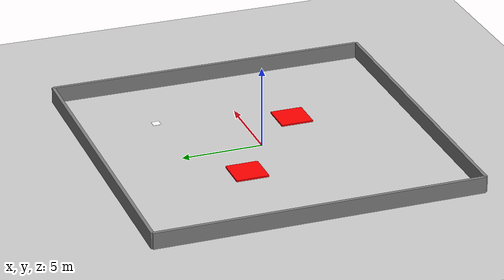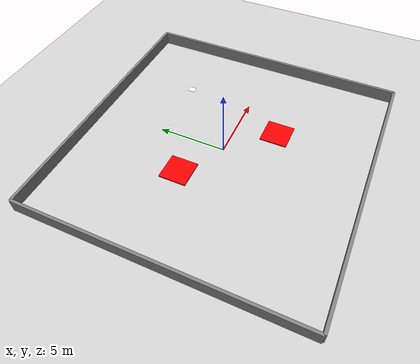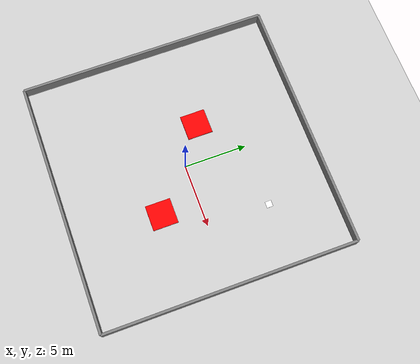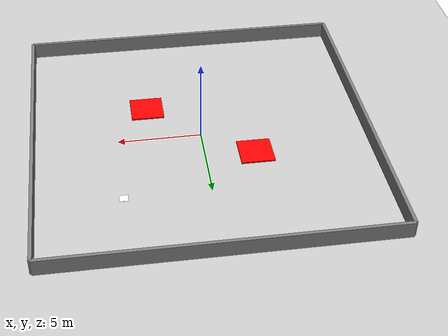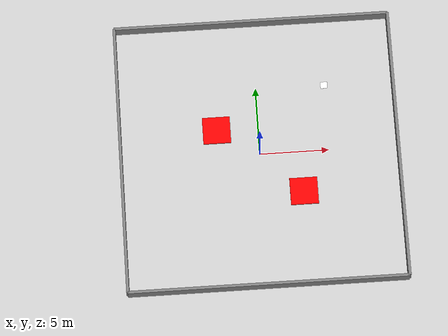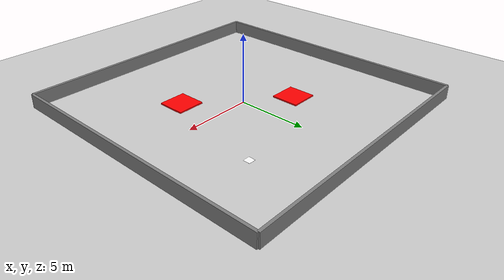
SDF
<?xml version="1.0" ?>
<sdf version="1.9">
  <world name="arena">

    <physics name="1ms" type="ignored">
      <max_step_size>0.001</max_step_size>
      <real_time_factor>1.0</real_time_factor>
    </physics>

    <plugin filename="gz-sim-physics-system"
            name="gz::sim::systems::Physics"/>
    <plugin filename="gz-sim-sensors-system"
            name="gz::sim::systems::Sensors">
      <render_engine>ogre2</render_engine>
    </plugin>
    <plugin filename="gz-sim-scene-broadcaster-system"
            name="gz::sim::systems::SceneBroadcaster"/>
    <plugin filename="gz-sim-user-commands-system"
            name="gz::sim::systems::UserCommands"/>

    <light type="directional" name="sun">
      <cast_shadows>true</cast_shadows>
      <pose>0 0 10 0 0 0</pose>
      <diffuse>1 1 1 1</diffuse>
    </light>

    <!-- Ground plane -->
    <model name="ground_plane">
      <static>true</static>
      <link name="link">
        <collision name="collision">
          <geometry><plane><normal>0 0 1</normal>
          <size>50 50</size></plane></geometry>
        </collision>
        <visual name="visual">
          <geometry><plane><normal>0 0 1</normal>
          <size>50 50</size></plane></geometry>
          <material><ambient>0.8 0.8 0.8 1</ambient></material>
        </visual>
      </link>
    </model>

    <!-- Arena boundary walls -->
    <!-- North wall -->
    <model name="wall_north">
      <static>true</static>
      <pose>0 10 0.5 0 0 0</pose>
      <link name="link">
        <collision name="col">
          <geometry><box><size>20 0.2 1</size></box></geometry>
        </collision>
        <visual name="vis">
          <geometry><box><size>20 0.2 1</size></box></geometry>
          <material><ambient>0.5 0.5 0.5 1</ambient></material>
        </visual>
      </link>
    </model>

    <!-- South wall -->
    <model name="wall_south">
      <static>true</static>
      <pose>0 -10 0.5 0 0 0</pose>
      <link name="link">
        <collision name="col">
          <geometry><box><size>20 0.2 1</size></box></geometry>
        </collision>
        <visual name="vis">
          <geometry><box><size>20 0.2 1</size></box></geometry>
          <material><ambient>0.5 0.5 0.5 1</ambient></material>
        </visual>
      </link>
    </model>

    <!-- East wall -->
    <model name="wall_east">
      <static>true</static>
      <pose>10 0 0.5 0 0 0</pose>
      <link name="link">
        <collision name="col">
          <geometry><box><size>0.2 20 1</size></box></geometry>
        </collision>
        <visual name="vis">
          <geometry><box><size>0.2 20 1</size></box></geometry>
          <material><ambient>0.5 0.5 0.5 1</ambient></material>
        </visual>
      </link>
    </model>

    <!-- West wall -->
    <model name="wall_west">
      <static>true</static>
      <pose>-10 0 0.5 0 0 0</pose>
      <link name="link">
        <collision name="col">
          <geometry><box><size>0.2 20 1</size></box></geometry>
        </collision>
        <visual name="vis">
          <geometry><box><size>0.2 20 1</size></box></geometry>
          <material><ambient>0.5 0.5 0.5 1</ambient></material>
        </visual>
      </link>
    </model>

    <!-- Red zone 1 (obstacle box on ground) -->
    <model name="red_zone_1">
      <static>true</static>
      <pose>-3 2 0.05 0 0 0</pose>
      <link name="link">
        <collision name="col">
          <geometry><box><size>2 2 0.1</size></box></geometry>
        </collision>
        <visual name="vis">
          <geometry><box><size>2 2 0.1</size></box></geometry>
          <material><ambient>1 0 0 1</ambient></material>
        </visual>
      </link>
    </model>

    <!-- Red zone 2 -->
    <model name="red_zone_2">
      <static>true</static>
      <pose>3 -3 0.05 0 0 0</pose>
      <link name="link">
        <collision name="col">
          <geometry><box><size>2 2 0.1</size></box></geometry>
        </collision>
        <visual name="vis">
          <geometry><box><size>2 2 0.1</size></box></geometry>
          <material><ambient>1 0 0 1</ambient></material>
        </visual>
      </link>
    </model>

    <!-- QR code target 1 (flat box with texture) -->
    <model name="qr_target_1">
      <static>true</static>
      <pose>5 5 0.01 0 0 0</pose>
      <link name="link">
        <visual name="vis">
          <geometry><box><size>0.5 0.5 0.01</size></box></geometry>
          <material><ambient>1 1 1 1</ambient></material>
        </visual>
      </link>
    </model>

  </world>
</sdf>
